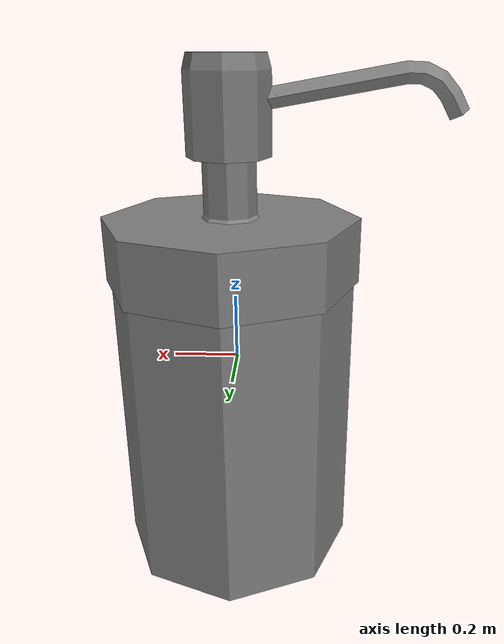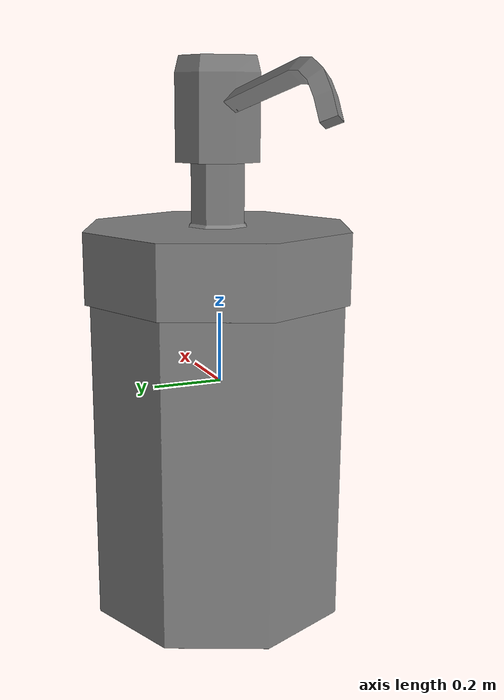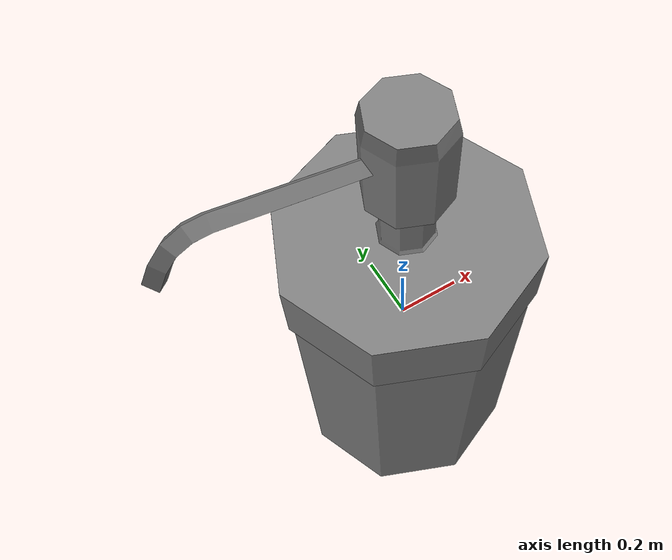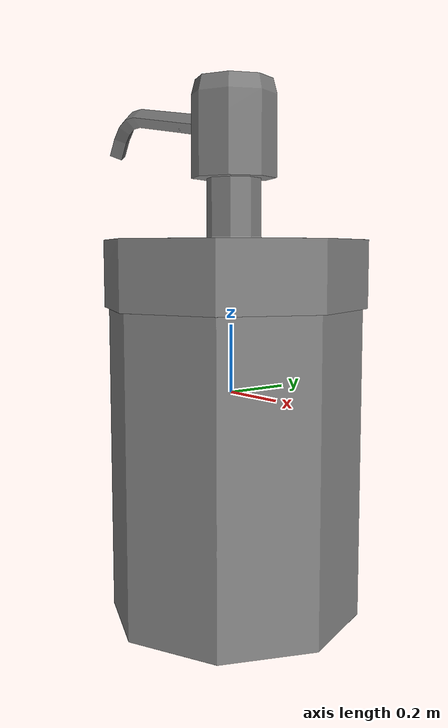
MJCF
<?xml version='1.0' encoding='UTF-8'?>
<mujoco model="partnet_5d80c1b5-bbcc-4066-9103-2460992ace27">
  <compiler angle="radian"/>
  <asset>
    <mesh name="original_2" content_type="model/obj" file="textured_objs/original_2.obj"/>
    <mesh name="original_8" content_type="model/obj" file="textured_objs/original_8.obj"/>
    <mesh name="original_6" content_type="model/obj" file="textured_objs/original_6.obj"/>
    <mesh name="original_7" content_type="model/obj" file="textured_objs/original_7.obj"/>
    <mesh name="original_4" content_type="model/obj" file="textured_objs/original_4.obj"/>
    <mesh name="original_3" content_type="model/obj" file="textured_objs/original_3.obj"/>
    <mesh name="original_9" content_type="model/obj" file="textured_objs/original_9.obj"/>
    <mesh name="original_5" content_type="model/obj" file="textured_objs/original_5.obj"/>
    <mesh name="original_1" content_type="model/obj" file="textured_objs/original_1.obj"/>
  </asset>
  <worldbody>
    <body name="base">
      <body name="link_2" quat="0.5 0.5 -0.5 -0.5">
        <geom type="mesh" mesh="original_4"/>
        <geom type="mesh" mesh="original_3"/>
        <geom type="mesh" mesh="original_9"/>
        <geom type="mesh" mesh="original_5"/>
        <geom type="mesh" mesh="original_1"/>
        <body name="link_1_helper" pos="-0.00161896 0 -0.0099245">
          <inertial pos="0 0 0" mass="1e-06" diaginertia="1e-10 1e-10 1e-10"/>
          <joint name="joint_4" pos="0 0 0" axis="0 1 0" type="slide" range="0 0.2"/>
          <body name="link_1">
            <joint name="joint_1" pos="0 0 0" axis="0 -1 0"/>
            <geom pos="0.00161896 0 0.0099245" quat="1 0 0 0" type="mesh" mesh="original_7"/>
            <body name="link_0_helper" pos="-0.000567544 0 0.0001455">
              <inertial pos="0 0 0" mass="1e-06" diaginertia="1e-10 1e-10 1e-10"/>
              <joint name="joint_3" pos="0 0 0" axis="0 -1 0" type="slide" range="0 0.17"/>
              <body name="link_0">
                <joint name="joint_0" pos="0 0 0" axis="0 1 0"/>
                <geom pos="0.0021865 0 0.009779" quat="1 0 0 0" type="mesh" mesh="original_2"/>
                <geom pos="0.0021865 0 0.009779" quat="1 0 0 0" type="mesh" mesh="original_8"/>
                <geom pos="0.0021865 0 0.009779" quat="1 0 0 0" type="mesh" mesh="original_6"/>
              </body>
            </body>
          </body>
        </body>
      </body>
    </body>
  </worldbody>
</mujoco>
